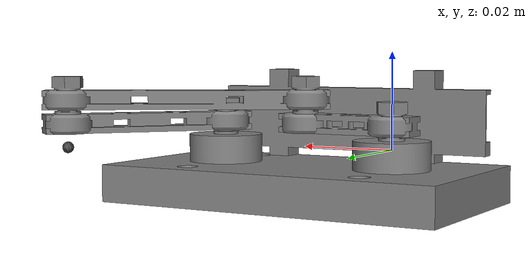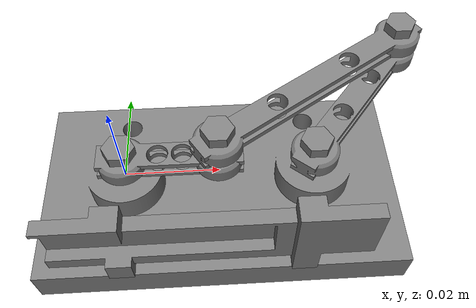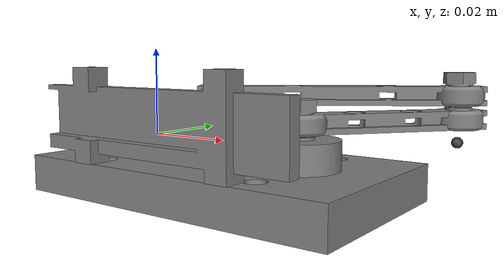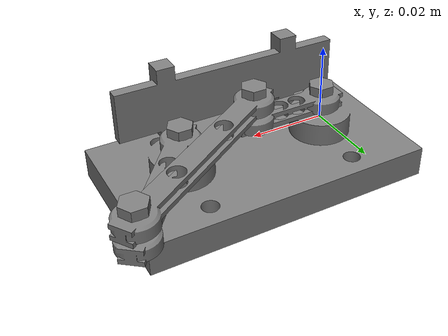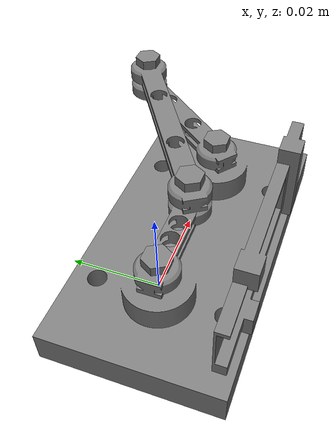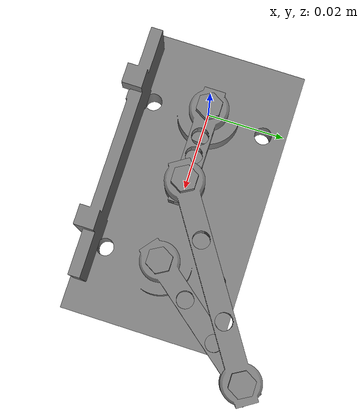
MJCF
<?xml version='1.0' encoding='utf-8'?>
<mujoco model="guided_four_bar_actuator">
  <compiler angle="radian" coordinate="local" />
  <option gravity="0 0 -9.81" />
  <asset>
    <mesh name="mesh_base" file="meshes/mesh_base.obj" scale="0.001 0.001 0.001" />
    <mesh name="mesh_coupler" file="meshes/mesh_coupler.obj" scale="0.001 0.001 0.001" />
    <mesh name="mesh_crank" file="meshes/mesh_crank.obj" scale="0.001 0.001 0.001" />
    <mesh name="mesh_ground_pin" file="meshes/mesh_ground_pin.obj" scale="0.001 0.001 0.001" />
    <mesh name="mesh_guard" file="meshes/mesh_guard.obj" scale="0.001 0.001 0.001" />
    <mesh name="mesh_link_pin" file="meshes/mesh_link_pin.obj" scale="0.001 0.001 0.001" />
    <mesh name="mesh_rocker" file="meshes/mesh_rocker.obj" scale="0.001 0.001 0.001" />
  </asset>
  <worldbody>
    <geom name="base" type="mesh" mesh="mesh_base" density="7850" contype="1" conaffinity="1" pos="0 0 0" quat="1 0 0 0" />
    <geom name="guard" type="mesh" mesh="mesh_guard" density="7850" contype="1" conaffinity="1" pos="0 0 0" quat="1 0 0 0" />
    <geom name="pin_a" type="mesh" mesh="mesh_ground_pin" density="7850" contype="1" conaffinity="1" pos="0 0 0" quat="1 0 0 0" />
    <geom name="pin_d" type="mesh" mesh="mesh_ground_pin" density="7850" contype="1" conaffinity="1" pos="0.04 0 0" quat="1 0 0 0" />
    <body name="body_crank" pos="0 0 0" quat="1 0 0 0">
      <joint name="joint_joint_guided_four_bar_actuator_crank_to_ground_454334399b27" type="hinge" pos="0 0 0" axis="0 0 1" limited="true" range="-0.785398163397 1.4835298642" />
      <geom name="crank" type="mesh" mesh="mesh_crank" density="7850" contype="1" conaffinity="1" pos="0 0 0" quat="1 0 0 0" />
      <geom name="pin_b" type="mesh" mesh="mesh_link_pin" density="7850" contype="1" conaffinity="1" pos="0.02 0 0" quat="1 0 0 0" />
      <body name="body_coupler" pos="0.02 0 0" quat="0.958514475617 0 0 0.285043856331">
        <joint name="joint_joint_guided_four_bar_actuator_coupler_to_crank_b25f6767f2b5" type="hinge" pos="0 0 0" axis="0 0 1" limited="true" range="-3.14159265359 3.14159265359" />
        <geom name="coupler" type="mesh" mesh="mesh_coupler" density="7850" contype="1" conaffinity="1" pos="0 0 0" quat="1 0 0 0" />
        <site name="closure_b_joint_guided_four_bar_actuator_coupler_to_rocker_aabbe9265c5d" size="0.0012" type="sphere" pos="0.05 3.5527136788e-18 0" quat="1 0 0 0" />
      </body>
      <site name="crank_input_axis" size="0.0012" type="sphere" pos="0 0 0" quat="1 0 0 0" />
    </body>
    <body name="body_rocker" pos="0.061875 0.027321866243 0" quat="1 0 0 0">
      <joint name="joint_joint_guided_four_bar_actuator_rocker_to_ground_44c094411452" type="hinge" pos="-0.021875 -0.027321866243 0" axis="0 0 1" limited="true" range="-0.785398163397 1.4835298642" />
      <geom name="pin_c" type="mesh" mesh="mesh_link_pin" density="7850" contype="1" conaffinity="1" pos="0 0 0" quat="1 0 0 0" />
      <geom name="rocker" type="mesh" mesh="mesh_rocker" density="7850" contype="1" conaffinity="1" pos="-0.021875 -0.027321866243 0" quat="0.901387818839 0 0 0.433012701949" />
      <site name="closure_a_joint_guided_four_bar_actuator_coupler_to_rocker_51377c0ce43d" size="0.0012" type="sphere" pos="-3.41865558084e-12 2.73010769547e-12 0" quat="0.901387818839 0 0 0.433012701949" />
    </body>
  </worldbody>
  <tendon />
  <equality>
    <connect name="closure_joint_guided_four_bar_actuator_coupler_to_rocker_415904a6d2cc" site1="closure_a_joint_guided_four_bar_actuator_coupler_to_rocker_51377c0ce43d" site2="closure_b_joint_guided_four_bar_actuator_coupler_to_rocker_aabbe9265c5d" />
  </equality>
</mujoco>
